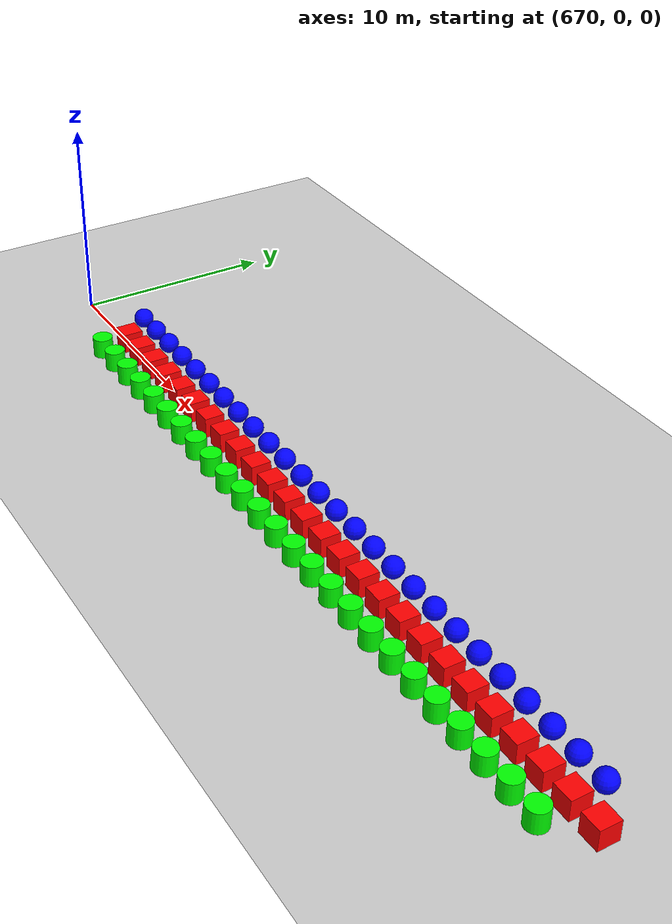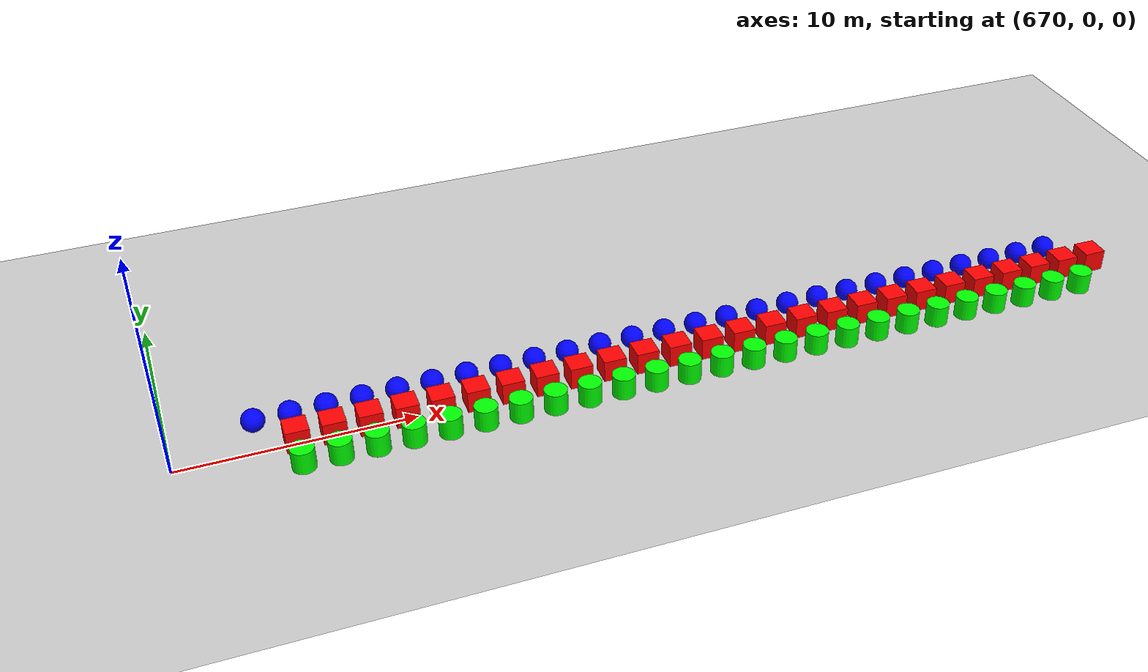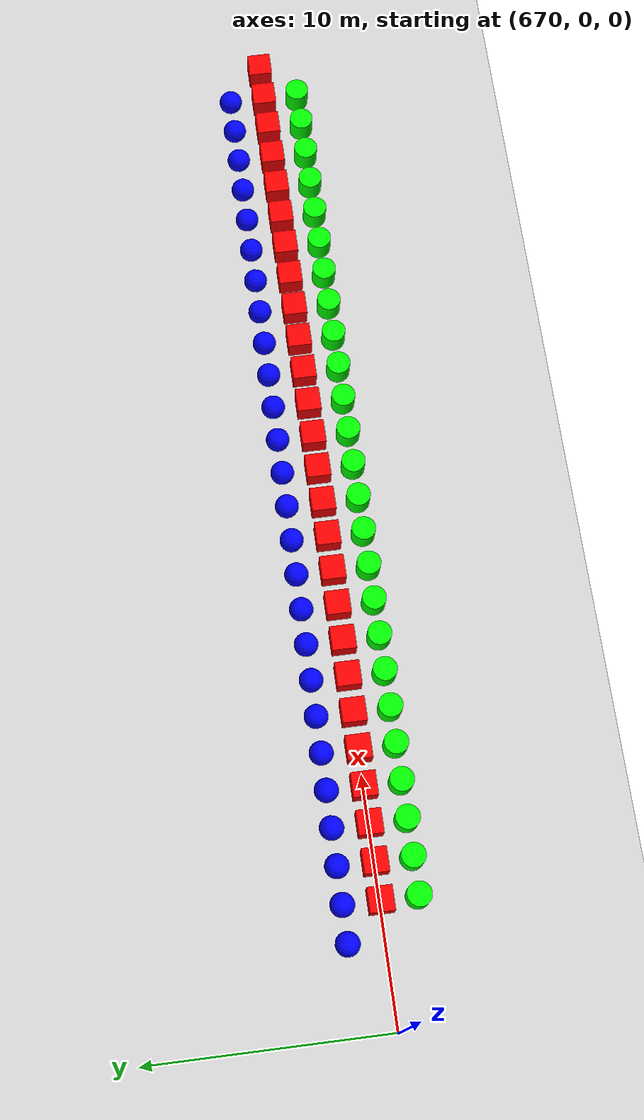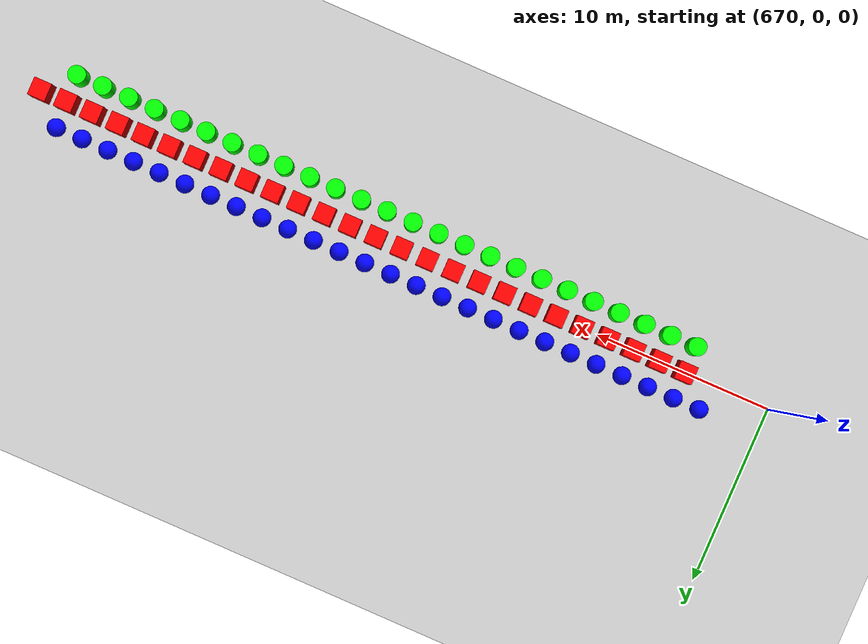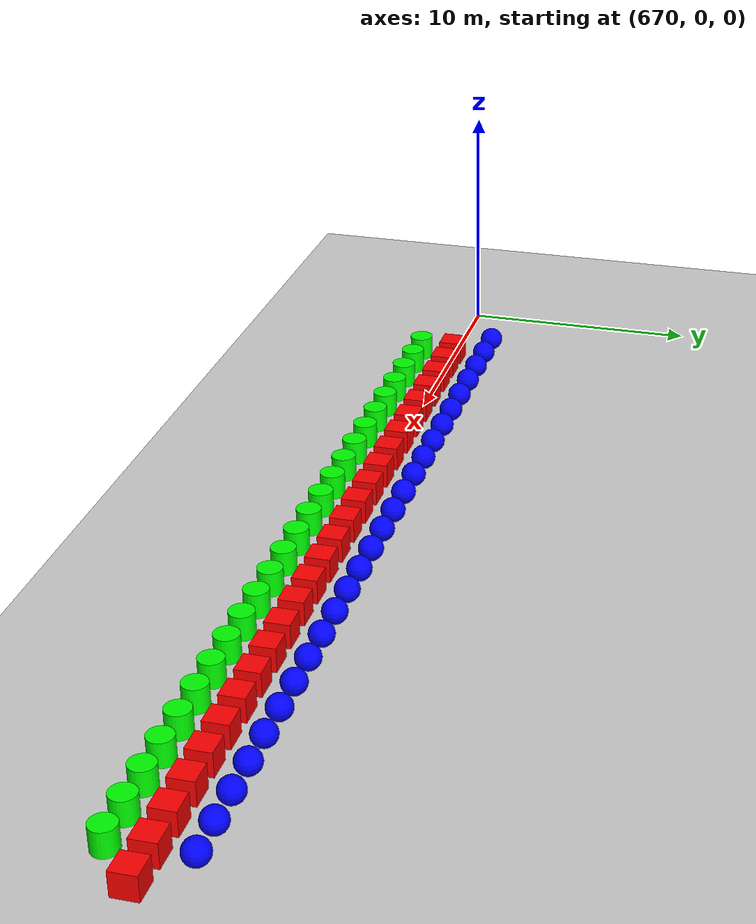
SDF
<sdf version="1.6">
 <world name="shapes">
  <model name="ground_plane">
   <static>true</static>
   <link name="link">
    <collision name="collision">
     <geometry><plane><normal>0 0 1</normal><size>100 100</size></plane></geometry>
    </collision>
    <visual name="visual">
     <geometry><plane><normal>0 0 1</normal><size>100 100</size></plane></geometry>
     <material>
      <ambient>0.8 0.8 0.8 1</ambient>
      <diffuse>0.8 0.8 0.8 1</diffuse>
      <specular>0.8 0.8 0.8 1</specular>
     </material>
    </visual>
   </link>
  </model>
  <model name="sphere_949">
   <static>false</static>
   <pose>673.5 1.5 0.5 0 0 0</pose>
   <link name="sphere_link">
    <inertial>
     <inertia><ixx>3</ixx><ixy>0</ixy><ixz>0</ixz><iyy>3</iyy><iyz>0</iyz><izz>3</izz></inertia>
     <mass>3.0</mass>
    </inertial>
    <collision name="sphere_collision"><geometry><sphere><radius>0.5</radius></sphere></geometry></collision>
    <visual name="sphere_visual">
     <geometry><sphere><radius>0.5</radius></sphere></geometry>
     <material><ambient>0 0 1 1</ambient><diffuse>0 0 1 1</diffuse><specular>0 0 1 1</specular></material>
    </visual>
   </link>
  </model>
  <model name="box_950">
   <static>false</static>
   <pose>675.0 0 0.5 0 0 0</pose>
   <link name="box_link">
    <inertial>
     <inertia><ixx>1</ixx><ixy>0</ixy><ixz>0</ixz><iyy>1</iyy><iyz>0</iyz><izz>1</izz></inertia>
     <mass>1.0</mass>
    </inertial>
    <collision name="box_collision"><geometry><box><size>1 1 1</size></box></geometry></collision>
    <visual name="box_visual">
     <geometry><box><size>1 1 1</size></box></geometry>
     <material><ambient>1 0 0 1</ambient><diffuse>1 0 0 1</diffuse><specular>1 0 0 1</specular></material>
    </visual>
   </link>
  </model>
  <model name="cylinder_950">
   <static>false</static>
   <pose>675.0 -1.5 0.5 0 0 0</pose>
   <link name="cylinder_link">
    <inertial>
     <inertia><ixx>2</ixx><ixy>0</ixy><ixz>0</ixz><iyy>2</iyy><iyz>0</iyz><izz>2</izz></inertia>
     <mass>2.0</mass>
    </inertial>
    <collision name="cylinder_collision">
     <geometry><cylinder><radius>0.5</radius><length>1.0</length></cylinder></geometry>
    </collision>
    <visual name="cylinder_visual">
     <geometry><cylinder><radius>0.5</radius><length>1.0</length></cylinder></geometry>
     <material><ambient>0 1 0 1</ambient><diffuse>0 1 0 1</diffuse><specular>0 1 0 1</specular></material>
    </visual>
   </link>
  </model>
  <model name="sphere_950">
   <static>false</static>
   <pose>675.0 1.5 0.5 0 0 0</pose>
   <link name="sphere_link">
    <inertial>
     <inertia><ixx>3</ixx><ixy>0</ixy><ixz>0</ixz><iyy>3</iyy><iyz>0</iyz><izz>3</izz></inertia>
     <mass>3.0</mass>
    </inertial>
    <collision name="sphere_collision"><geometry><sphere><radius>0.5</radius></sphere></geometry></collision>
    <visual name="sphere_visual">
     <geometry><sphere><radius>0.5</radius></sphere></geometry>
     <material><ambient>0 0 1 1</ambient><diffuse>0 0 1 1</diffuse><specular>0 0 1 1</specular></material>
    </visual>
   </link>
  </model>
  <model name="box_951">
   <static>false</static>
   <pose>676.5 0 0.5 0 0 0</pose>
   <link name="box_link">
    <inertial>
     <inertia><ixx>1</ixx><ixy>0</ixy><ixz>0</ixz><iyy>1</iyy><iyz>0</iyz><izz>1</izz></inertia>
     <mass>1.0</mass>
    </inertial>
    <collision name="box_collision"><geometry><box><size>1 1 1</size></box></geometry></collision>
    <visual name="box_visual">
     <geometry><box><size>1 1 1</size></box></geometry>
     <material><ambient>1 0 0 1</ambient><diffuse>1 0 0 1</diffuse><specular>1 0 0 1</specular></material>
    </visual>
   </link>
  </model>
  <model name="cylinder_951">
   <static>false</static>
   <pose>676.5 -1.5 0.5 0 0 0</pose>
   <link name="cylinder_link">
    <inertial>
     <inertia><ixx>2</ixx><ixy>0</ixy><ixz>0</ixz><iyy>2</iyy><iyz>0</iyz><izz>2</izz></inertia>
     <mass>2.0</mass>
    </inertial>
    <collision name="cylinder_collision">
     <geometry><cylinder><radius>0.5</radius><length>1.0</length></cylinder></geometry>
    </collision>
    <visual name="cylinder_visual">
     <geometry><cylinder><radius>0.5</radius><length>1.0</length></cylinder></geometry>
     <material><ambient>0 1 0 1</ambient><diffuse>0 1 0 1</diffuse><specular>0 1 0 1</specular></material>
    </visual>
   </link>
  </model>
  <model name="sphere_951">
   <static>false</static>
   <pose>676.5 1.5 0.5 0 0 0</pose>
   <link name="sphere_link">
    <inertial>
     <inertia><ixx>3</ixx><ixy>0</ixy><ixz>0</ixz><iyy>3</iyy><iyz>0</iyz><izz>3</izz></inertia>
     <mass>3.0</mass>
    </inertial>
    <collision name="sphere_collision"><geometry><sphere><radius>0.5</radius></sphere></geometry></collision>
    <visual name="sphere_visual">
     <geometry><sphere><radius>0.5</radius></sphere></geometry>
     <material><ambient>0 0 1 1</ambient><diffuse>0 0 1 1</diffuse><specular>0 0 1 1</specular></material>
    </visual>
   </link>
  </model>
  <model name="box_952">
   <static>false</static>
   <pose>678.0 0 0.5 0 0 0</pose>
   <link name="box_link">
    <inertial>
     <inertia><ixx>1</ixx><ixy>0</ixy><ixz>0</ixz><iyy>1</iyy><iyz>0</iyz><izz>1</izz></inertia>
     <mass>1.0</mass>
    </inertial>
    <collision name="box_collision"><geometry><box><size>1 1 1</size></box></geometry></collision>
    <visual name="box_visual">
     <geometry><box><size>1 1 1</size></box></geometry>
     <material><ambient>1 0 0 1</ambient><diffuse>1 0 0 1</diffuse><specular>1 0 0 1</specular></material>
    </visual>
   </link>
  </model>
  <model name="cylinder_952">
   <static>false</static>
   <pose>678.0 -1.5 0.5 0 0 0</pose>
   <link name="cylinder_link">
    <inertial>
     <inertia><ixx>2</ixx><ixy>0</ixy><ixz>0</ixz><iyy>2</iyy><iyz>0</iyz><izz>2</izz></inertia>
     <mass>2.0</mass>
    </inertial>
    <collision name="cylinder_collision">
     <geometry><cylinder><radius>0.5</radius><length>1.0</length></cylinder></geometry>
    </collision>
    <visual name="cylinder_visual">
     <geometry><cylinder><radius>0.5</radius><length>1.0</length></cylinder></geometry>
     <material><ambient>0 1 0 1</ambient><diffuse>0 1 0 1</diffuse><specular>0 1 0 1</specular></material>
    </visual>
   </link>
  </model>
  <model name="sphere_952">
   <static>false</static>
   <pose>678.0 1.5 0.5 0 0 0</pose>
   <link name="sphere_link">
    <inertial>
     <inertia><ixx>3</ixx><ixy>0</ixy><ixz>0</ixz><iyy>3</iyy><iyz>0</iyz><izz>3</izz></inertia>
     <mass>3.0</mass>
    </inertial>
    <collision name="sphere_collision"><geometry><sphere><radius>0.5</radius></sphere></geometry></collision>
    <visual name="sphere_visual">
     <geometry><sphere><radius>0.5</radius></sphere></geometry>
     <material><ambient>0 0 1 1</ambient><diffuse>0 0 1 1</diffuse><specular>0 0 1 1</specular></material>
    </visual>
   </link>
  </model>
  <model name="box_953">
   <static>false</static>
   <pose>679.5 0 0.5 0 0 0</pose>
   <link name="box_link">
    <inertial>
     <inertia><ixx>1</ixx><ixy>0</ixy><ixz>0</ixz><iyy>1</iyy><iyz>0</iyz><izz>1</izz></inertia>
     <mass>1.0</mass>
    </inertial>
    <collision name="box_collision"><geometry><box><size>1 1 1</size></box></geometry></collision>
    <visual name="box_visual">
     <geometry><box><size>1 1 1</size></box></geometry>
     <material><ambient>1 0 0 1</ambient><diffuse>1 0 0 1</diffuse><specular>1 0 0 1</specular></material>
    </visual>
   </link>
  </model>
  <model name="cylinder_953">
   <static>false</static>
   <pose>679.5 -1.5 0.5 0 0 0</pose>
   <link name="cylinder_link">
    <inertial>
     <inertia><ixx>2</ixx><ixy>0</ixy><ixz>0</ixz><iyy>2</iyy><iyz>0</iyz><izz>2</izz></inertia>
     <mass>2.0</mass>
    </inertial>
    <collision name="cylinder_collision">
     <geometry><cylinder><radius>0.5</radius><length>1.0</length></cylinder></geometry>
    </collision>
    <visual name="cylinder_visual">
     <geometry><cylinder><radius>0.5</radius><length>1.0</length></cylinder></geometry>
     <material><ambient>0 1 0 1</ambient><diffuse>0 1 0 1</diffuse><specular>0 1 0 1</specular></material>
    </visual>
   </link>
  </model>
  <model name="sphere_953">
   <static>false</static>
   <pose>679.5 1.5 0.5 0 0 0</pose>
   <link name="sphere_link">
    <inertial>
     <inertia><ixx>3</ixx><ixy>0</ixy><ixz>0</ixz><iyy>3</iyy><iyz>0</iyz><izz>3</izz></inertia>
     <mass>3.0</mass>
    </inertial>
    <collision name="sphere_collision"><geometry><sphere><radius>0.5</radius></sphere></geometry></collision>
    <visual name="sphere_visual">
     <geometry><sphere><radius>0.5</radius></sphere></geometry>
     <material><ambient>0 0 1 1</ambient><diffuse>0 0 1 1</diffuse><specular>0 0 1 1</specular></material>
    </visual>
   </link>
  </model>
  <model name="box_954">
   <static>false</static>
   <pose>681.0 0 0.5 0 0 0</pose>
   <link name="box_link">
    <inertial>
     <inertia><ixx>1</ixx><ixy>0</ixy><ixz>0</ixz><iyy>1</iyy><iyz>0</iyz><izz>1</izz></inertia>
     <mass>1.0</mass>
    </inertial>
    <collision name="box_collision"><geometry><box><size>1 1 1</size></box></geometry></collision>
    <visual name="box_visual">
     <geometry><box><size>1 1 1</size></box></geometry>
     <material><ambient>1 0 0 1</ambient><diffuse>1 0 0 1</diffuse><specular>1 0 0 1</specular></material>
    </visual>
   </link>
  </model>
  <model name="cylinder_954">
   <static>false</static>
   <pose>681.0 -1.5 0.5 0 0 0</pose>
   <link name="cylinder_link">
    <inertial>
     <inertia><ixx>2</ixx><ixy>0</ixy><ixz>0</ixz><iyy>2</iyy><iyz>0</iyz><izz>2</izz></inertia>
     <mass>2.0</mass>
    </inertial>
    <collision name="cylinder_collision">
     <geometry><cylinder><radius>0.5</radius><length>1.0</length></cylinder></geometry>
    </collision>
    <visual name="cylinder_visual">
     <geometry><cylinder><radius>0.5</radius><length>1.0</length></cylinder></geometry>
     <material><ambient>0 1 0 1</ambient><diffuse>0 1 0 1</diffuse><specular>0 1 0 1</specular></material>
    </visual>
   </link>
  </model>
  <model name="sphere_954">
   <static>false</static>
   <pose>681.0 1.5 0.5 0 0 0</pose>
   <link name="sphere_link">
    <inertial>
     <inertia><ixx>3</ixx><ixy>0</ixy><ixz>0</ixz><iyy>3</iyy><iyz>0</iyz><izz>3</izz></inertia>
     <mass>3.0</mass>
    </inertial>
    <collision name="sphere_collision"><geometry><sphere><radius>0.5</radius></sphere></geometry></collision>
    <visual name="sphere_visual">
     <geometry><sphere><radius>0.5</radius></sphere></geometry>
     <material><ambient>0 0 1 1</ambient><diffuse>0 0 1 1</diffuse><specular>0 0 1 1</specular></material>
    </visual>
   </link>
  </model>
  <model name="box_955">
   <static>false</static>
   <pose>682.5 0 0.5 0 0 0</pose>
   <link name="box_link">
    <inertial>
     <inertia><ixx>1</ixx><ixy>0</ixy><ixz>0</ixz><iyy>1</iyy><iyz>0</iyz><izz>1</izz></inertia>
     <mass>1.0</mass>
    </inertial>
    <collision name="box_collision"><geometry><box><size>1 1 1</size></box></geometry></collision>
    <visual name="box_visual">
     <geometry><box><size>1 1 1</size></box></geometry>
     <material><ambient>1 0 0 1</ambient><diffuse>1 0 0 1</diffuse><specular>1 0 0 1</specular></material>
    </visual>
   </link>
  </model>
  <model name="cylinder_955">
   <static>false</static>
   <pose>682.5 -1.5 0.5 0 0 0</pose>
   <link name="cylinder_link">
    <inertial>
     <inertia><ixx>2</ixx><ixy>0</ixy><ixz>0</ixz><iyy>2</iyy><iyz>0</iyz><izz>2</izz></inertia>
     <mass>2.0</mass>
    </inertial>
    <collision name="cylinder_collision">
     <geometry><cylinder><radius>0.5</radius><length>1.0</length></cylinder></geometry>
    </collision>
    <visual name="cylinder_visual">
     <geometry><cylinder><radius>0.5</radius><length>1.0</length></cylinder></geometry>
     <material><ambient>0 1 0 1</ambient><diffuse>0 1 0 1</diffuse><specular>0 1 0 1</specular></material>
    </visual>
   </link>
  </model>
  <model name="sphere_955">
   <static>false</static>
   <pose>682.5 1.5 0.5 0 0 0</pose>
   <link name="sphere_link">
    <inertial>
     <inertia><ixx>3</ixx><ixy>0</ixy><ixz>0</ixz><iyy>3</iyy><iyz>0</iyz><izz>3</izz></inertia>
     <mass>3.0</mass>
    </inertial>
    <collision name="sphere_collision"><geometry><sphere><radius>0.5</radius></sphere></geometry></collision>
    <visual name="sphere_visual">
     <geometry><sphere><radius>0.5</radius></sphere></geometry>
     <material><ambient>0 0 1 1</ambient><diffuse>0 0 1 1</diffuse><specular>0 0 1 1</specular></material>
    </visual>
   </link>
  </model>
  <model name="box_956">
   <static>false</static>
   <pose>684.0 0 0.5 0 0 0</pose>
   <link name="box_link">
    <inertial>
     <inertia><ixx>1</ixx><ixy>0</ixy><ixz>0</ixz><iyy>1</iyy><iyz>0</iyz><izz>1</izz></inertia>
     <mass>1.0</mass>
    </inertial>
    <collision name="box_collision"><geometry><box><size>1 1 1</size></box></geometry></collision>
    <visual name="box_visual">
     <geometry><box><size>1 1 1</size></box></geometry>
     <material><ambient>1 0 0 1</ambient><diffuse>1 0 0 1</diffuse><specular>1 0 0 1</specular></material>
    </visual>
   </link>
  </model>
  <model name="cylinder_956">
   <static>false</static>
   <pose>684.0 -1.5 0.5 0 0 0</pose>
   <link name="cylinder_link">
    <inertial>
     <inertia><ixx>2</ixx><ixy>0</ixy><ixz>0</ixz><iyy>2</iyy><iyz>0</iyz><izz>2</izz></inertia>
     <mass>2.0</mass>
    </inertial>
    <collision name="cylinder_collision">
     <geometry><cylinder><radius>0.5</radius><length>1.0</length></cylinder></geometry>
    </collision>
    <visual name="cylinder_visual">
     <geometry><cylinder><radius>0.5</radius><length>1.0</length></cylinder></geometry>
     <material><ambient>0 1 0 1</ambient><diffuse>0 1 0 1</diffuse><specular>0 1 0 1</specular></material>
    </visual>
   </link>
  </model>
  <model name="sphere_956">
   <static>false</static>
   <pose>684.0 1.5 0.5 0 0 0</pose>
   <link name="sphere_link">
    <inertial>
     <inertia><ixx>3</ixx><ixy>0</ixy><ixz>0</ixz><iyy>3</iyy><iyz>0</iyz><izz>3</izz></inertia>
     <mass>3.0</mass>
    </inertial>
    <collision name="sphere_collision"><geometry><sphere><radius>0.5</radius></sphere></geometry></collision>
    <visual name="sphere_visual">
     <geometry><sphere><radius>0.5</radius></sphere></geometry>
     <material><ambient>0 0 1 1</ambient><diffuse>0 0 1 1</diffuse><specular>0 0 1 1</specular></material>
    </visual>
   </link>
  </model>
  <model name="box_957">
   <static>false</static>
   <pose>685.5 0 0.5 0 0 0</pose>
   <link name="box_link">
    <inertial>
     <inertia><ixx>1</ixx><ixy>0</ixy><ixz>0</ixz><iyy>1</iyy><iyz>0</iyz><izz>1</izz></inertia>
     <mass>1.0</mass>
    </inertial>
    <collision name="box_collision"><geometry><box><size>1 1 1</size></box></geometry></collision>
    <visual name="box_visual">
     <geometry><box><size>1 1 1</size></box></geometry>
     <material><ambient>1 0 0 1</ambient><diffuse>1 0 0 1</diffuse><specular>1 0 0 1</specular></material>
    </visual>
   </link>
  </model>
  <model name="cylinder_957">
   <static>false</static>
   <pose>685.5 -1.5 0.5 0 0 0</pose>
   <link name="cylinder_link">
    <inertial>
     <inertia><ixx>2</ixx><ixy>0</ixy><ixz>0</ixz><iyy>2</iyy><iyz>0</iyz><izz>2</izz></inertia>
     <mass>2.0</mass>
    </inertial>
    <collision name="cylinder_collision">
     <geometry><cylinder><radius>0.5</radius><length>1.0</length></cylinder></geometry>
    </collision>
    <visual name="cylinder_visual">
     <geometry><cylinder><radius>0.5</radius><length>1.0</length></cylinder></geometry>
     <material><ambient>0 1 0 1</ambient><diffuse>0 1 0 1</diffuse><specular>0 1 0 1</specular></material>
    </visual>
   </link>
  </model>
  <model name="sphere_957">
   <static>false</static>
   <pose>685.5 1.5 0.5 0 0 0</pose>
   <link name="sphere_link">
    <inertial>
     <inertia><ixx>3</ixx><ixy>0</ixy><ixz>0</ixz><iyy>3</iyy><iyz>0</iyz><izz>3</izz></inertia>
     <mass>3.0</mass>
    </inertial>
    <collision name="sphere_collision"><geometry><sphere><radius>0.5</radius></sphere></geometry></collision>
    <visual name="sphere_visual">
     <geometry><sphere><radius>0.5</radius></sphere></geometry>
     <material><ambient>0 0 1 1</ambient><diffuse>0 0 1 1</diffuse><specular>0 0 1 1</specular></material>
    </visual>
   </link>
  </model>
  <model name="box_958">
   <static>false</static>
   <pose>687.0 0 0.5 0 0 0</pose>
   <link name="box_link">
    <inertial>
     <inertia><ixx>1</ixx><ixy>0</ixy><ixz>0</ixz><iyy>1</iyy><iyz>0</iyz><izz>1</izz></inertia>
     <mass>1.0</mass>
    </inertial>
    <collision name="box_collision"><geometry><box><size>1 1 1</size></box></geometry></collision>
    <visual name="box_visual">
     <geometry><box><size>1 1 1</size></box></geometry>
     <material><ambient>1 0 0 1</ambient><diffuse>1 0 0 1</diffuse><specular>1 0 0 1</specular></material>
    </visual>
   </link>
  </model>
  <model name="cylinder_958">
   <static>false</static>
   <pose>687.0 -1.5 0.5 0 0 0</pose>
   <link name="cylinder_link">
    <inertial>
     <inertia><ixx>2</ixx><ixy>0</ixy><ixz>0</ixz><iyy>2</iyy><iyz>0</iyz><izz>2</izz></inertia>
     <mass>2.0</mass>
    </inertial>
    <collision name="cylinder_collision">
     <geometry><cylinder><radius>0.5</radius><length>1.0</length></cylinder></geometry>
    </collision>
    <visual name="cylinder_visual">
     <geometry><cylinder><radius>0.5</radius><length>1.0</length></cylinder></geometry>
     <material><ambient>0 1 0 1</ambient><diffuse>0 1 0 1</diffuse><specular>0 1 0 1</specular></material>
    </visual>
   </link>
  </model>
  <model name="sphere_958">
   <static>false</static>
   <pose>687.0 1.5 0.5 0 0 0</pose>
   <link name="sphere_link">
    <inertial>
     <inertia><ixx>3</ixx><ixy>0</ixy><ixz>0</ixz><iyy>3</iyy><iyz>0</iyz><izz>3</izz></inertia>
     <mass>3.0</mass>
    </inertial>
    <collision name="sphere_collision"><geometry><sphere><radius>0.5</radius></sphere></geometry></collision>
    <visual name="sphere_visual">
     <geometry><sphere><radius>0.5</radius></sphere></geometry>
     <material><ambient>0 0 1 1</ambient><diffuse>0 0 1 1</diffuse><specular>0 0 1 1</specular></material>
    </visual>
   </link>
  </model>
  <model name="box_959">
   <static>false</static>
   <pose>688.5 0 0.5 0 0 0</pose>
   <link name="box_link">
    <inertial>
     <inertia><ixx>1</ixx><ixy>0</ixy><ixz>0</ixz><iyy>1</iyy><iyz>0</iyz><izz>1</izz></inertia>
     <mass>1.0</mass>
    </inertial>
    <collision name="box_collision"><geometry><box><size>1 1 1</size></box></geometry></collision>
    <visual name="box_visual">
     <geometry><box><size>1 1 1</size></box></geometry>
     <material><ambient>1 0 0 1</ambient><diffuse>1 0 0 1</diffuse><specular>1 0 0 1</specular></material>
    </visual>
   </link>
  </model>
  <model name="cylinder_959">
   <static>false</static>
   <pose>688.5 -1.5 0.5 0 0 0</pose>
   <link name="cylinder_link">
    <inertial>
     <inertia><ixx>2</ixx><ixy>0</ixy><ixz>0</ixz><iyy>2</iyy><iyz>0</iyz><izz>2</izz></inertia>
     <mass>2.0</mass>
    </inertial>
    <collision name="cylinder_collision">
     <geometry><cylinder><radius>0.5</radius><length>1.0</length></cylinder></geometry>
    </collision>
    <visual name="cylinder_visual">
     <geometry><cylinder><radius>0.5</radius><length>1.0</length></cylinder></geometry>
     <material><ambient>0 1 0 1</ambient><diffuse>0 1 0 1</diffuse><specular>0 1 0 1</specular></material>
    </visual>
   </link>
  </model>
  <model name="sphere_959">
   <static>false</static>
   <pose>688.5 1.5 0.5 0 0 0</pose>
   <link name="sphere_link">
    <inertial>
     <inertia><ixx>3</ixx><ixy>0</ixy><ixz>0</ixz><iyy>3</iyy><iyz>0</iyz><izz>3</izz></inertia>
     <mass>3.0</mass>
    </inertial>
    <collision name="sphere_collision"><geometry><sphere><radius>0.5</radius></sphere></geometry></collision>
    <visual name="sphere_visual">
     <geometry><sphere><radius>0.5</radius></sphere></geometry>
     <material><ambient>0 0 1 1</ambient><diffuse>0 0 1 1</diffuse><specular>0 0 1 1</specular></material>
    </visual>
   </link>
  </model>
  <model name="box_960">
   <static>false</static>
   <pose>690.0 0 0.5 0 0 0</pose>
   <link name="box_link">
    <inertial>
     <inertia><ixx>1</ixx><ixy>0</ixy><ixz>0</ixz><iyy>1</iyy><iyz>0</iyz><izz>1</izz></inertia>
     <mass>1.0</mass>
    </inertial>
    <collision name="box_collision"><geometry><box><size>1 1 1</size></box></geometry></collision>
    <visual name="box_visual">
     <geometry><box><size>1 1 1</size></box></geometry>
     <material><ambient>1 0 0 1</ambient><diffuse>1 0 0 1</diffuse><specular>1 0 0 1</specular></material>
    </visual>
   </link>
  </model>
  <model name="cylinder_960">
   <static>false</static>
   <pose>690.0 -1.5 0.5 0 0 0</pose>
   <link name="cylinder_link">
    <inertial>
     <inertia><ixx>2</ixx><ixy>0</ixy><ixz>0</ixz><iyy>2</iyy><iyz>0</iyz><izz>2</izz></inertia>
     <mass>2.0</mass>
    </inertial>
    <collision name="cylinder_collision">
     <geometry><cylinder><radius>0.5</radius><length>1.0</length></cylinder></geometry>
    </collision>
    <visual name="cylinder_visual">
     <geometry><cylinder><radius>0.5</radius><length>1.0</length></cylinder></geometry>
     <material><ambient>0 1 0 1</ambient><diffuse>0 1 0 1</diffuse><specular>0 1 0 1</specular></material>
    </visual>
   </link>
  </model>
  <model name="sphere_960">
   <static>false</static>
   <pose>690.0 1.5 0.5 0 0 0</pose>
   <link name="sphere_link">
    <inertial>
     <inertia><ixx>3</ixx><ixy>0</ixy><ixz>0</ixz><iyy>3</iyy><iyz>0</iyz><izz>3</izz></inertia>
     <mass>3.0</mass>
    </inertial>
    <collision name="sphere_collision"><geometry><sphere><radius>0.5</radius></sphere></geometry></collision>
    <visual name="sphere_visual">
     <geometry><sphere><radius>0.5</radius></sphere></geometry>
     <material><ambient>0 0 1 1</ambient><diffuse>0 0 1 1</diffuse><specular>0 0 1 1</specular></material>
    </visual>
   </link>
  </model>
  <model name="box_961">
   <static>false</static>
   <pose>691.5 0 0.5 0 0 0</pose>
   <link name="box_link">
    <inertial>
     <inertia><ixx>1</ixx><ixy>0</ixy><ixz>0</ixz><iyy>1</iyy><iyz>0</iyz><izz>1</izz></inertia>
     <mass>1.0</mass>
    </inertial>
    <collision name="box_collision"><geometry><box><size>1 1 1</size></box></geometry></collision>
    <visual name="box_visual">
     <geometry><box><size>1 1 1</size></box></geometry>
     <material><ambient>1 0 0 1</ambient><diffuse>1 0 0 1</diffuse><specular>1 0 0 1</specular></material>
    </visual>
   </link>
  </model>
  <model name="cylinder_961">
   <static>false</static>
   <pose>691.5 -1.5 0.5 0 0 0</pose>
   <link name="cylinder_link">
    <inertial>
     <inertia><ixx>2</ixx><ixy>0</ixy><ixz>0</ixz><iyy>2</iyy><iyz>0</iyz><izz>2</izz></inertia>
     <mass>2.0</mass>
    </inertial>
    <collision name="cylinder_collision">
     <geometry><cylinder><radius>0.5</radius><length>1.0</length></cylinder></geometry>
    </collision>
    <visual name="cylinder_visual">
     <geometry><cylinder><radius>0.5</radius><length>1.0</length></cylinder></geometry>
     <material><ambient>0 1 0 1</ambient><diffuse>0 1 0 1</diffuse><specular>0 1 0 1</specular></material>
    </visual>
   </link>
  </model>
  <model name="sphere_961">
   <static>false</static>
   <pose>691.5 1.5 0.5 0 0 0</pose>
   <link name="sphere_link">
    <inertial>
     <inertia><ixx>3</ixx><ixy>0</ixy><ixz>0</ixz><iyy>3</iyy><iyz>0</iyz><izz>3</izz></inertia>
     <mass>3.0</mass>
    </inertial>
    <collision name="sphere_collision"><geometry><sphere><radius>0.5</radius></sphere></geometry></collision>
    <visual name="sphere_visual">
     <geometry><sphere><radius>0.5</radius></sphere></geometry>
     <material><ambient>0 0 1 1</ambient><diffuse>0 0 1 1</diffuse><specular>0 0 1 1</specular></material>
    </visual>
   </link>
  </model>
  <model name="box_962">
   <static>false</static>
   <pose>693.0 0 0.5 0 0 0</pose>
   <link name="box_link">
    <inertial>
     <inertia><ixx>1</ixx><ixy>0</ixy><ixz>0</ixz><iyy>1</iyy><iyz>0</iyz><izz>1</izz></inertia>
     <mass>1.0</mass>
    </inertial>
    <collision name="box_collision"><geometry><box><size>1 1 1</size></box></geometry></collision>
    <visual name="box_visual">
     <geometry><box><size>1 1 1</size></box></geometry>
     <material><ambient>1 0 0 1</ambient><diffuse>1 0 0 1</diffuse><specular>1 0 0 1</specular></material>
    </visual>
   </link>
  </model>
  <model name="cylinder_962">
   <static>false</static>
   <pose>693.0 -1.5 0.5 0 0 0</pose>
   <link name="cylinder_link">
    <inertial>
     <inertia><ixx>2</ixx><ixy>0</ixy><ixz>0</ixz><iyy>2</iyy><iyz>0</iyz><izz>2</izz></inertia>
     <mass>2.0</mass>
    </inertial>
    <collision name="cylinder_collision">
     <geometry><cylinder><radius>0.5</radius><length>1.0</length></cylinder></geometry>
    </collision>
    <visual name="cylinder_visual">
     <geometry><cylinder><radius>0.5</radius><length>1.0</length></cylinder></geometry>
     <material><ambient>0 1 0 1</ambient><diffuse>0 1 0 1</diffuse><specular>0 1 0 1</specular></material>
    </visual>
   </link>
  </model>
  <model name="sphere_962">
   <static>false</static>
   <pose>693.0 1.5 0.5 0 0 0</pose>
   <link name="sphere_link">
    <inertial>
     <inertia><ixx>3</ixx><ixy>0</ixy><ixz>0</ixz><iyy>3</iyy><iyz>0</iyz><izz>3</izz></inertia>
     <mass>3.0</mass>
    </inertial>
    <collision name="sphere_collision"><geometry><sphere><radius>0.5</radius></sphere></geometry></collision>
    <visual name="sphere_visual">
     <geometry><sphere><radius>0.5</radius></sphere></geometry>
     <material><ambient>0 0 1 1</ambient><diffuse>0 0 1 1</diffuse><specular>0 0 1 1</specular></material>
    </visual>
   </link>
  </model>
  <model name="box_963">
   <static>false</static>
   <pose>694.5 0 0.5 0 0 0</pose>
   <link name="box_link">
    <inertial>
     <inertia><ixx>1</ixx><ixy>0</ixy><ixz>0</ixz><iyy>1</iyy><iyz>0</iyz><izz>1</izz></inertia>
     <mass>1.0</mass>
    </inertial>
    <collision name="box_collision"><geometry><box><size>1 1 1</size></box></geometry></collision>
    <visual name="box_visual">
     <geometry><box><size>1 1 1</size></box></geometry>
     <material><ambient>1 0 0 1</ambient><diffuse>1 0 0 1</diffuse><specular>1 0 0 1</specular></material>
    </visual>
   </link>
  </model>
  <model name="cylinder_963">
   <static>false</static>
   <pose>694.5 -1.5 0.5 0 0 0</pose>
   <link name="cylinder_link">
    <inertial>
     <inertia><ixx>2</ixx><ixy>0</ixy><ixz>0</ixz><iyy>2</iyy><iyz>0</iyz><izz>2</izz></inertia>
     <mass>2.0</mass>
    </inertial>
    <collision name="cylinder_collision">
     <geometry><cylinder><radius>0.5</radius><length>1.0</length></cylinder></geometry>
    </collision>
    <visual name="cylinder_visual">
     <geometry><cylinder><radius>0.5</radius><length>1.0</length></cylinder></geometry>
     <material><ambient>0 1 0 1</ambient><diffuse>0 1 0 1</diffuse><specular>0 1 0 1</specular></material>
    </visual>
   </link>
  </model>
  <model name="sphere_963">
   <static>false</static>
   <pose>694.5 1.5 0.5 0 0 0</pose>
   <link name="sphere_link">
    <inertial>
     <inertia><ixx>3</ixx><ixy>0</ixy><ixz>0</ixz><iyy>3</iyy><iyz>0</iyz><izz>3</izz></inertia>
     <mass>3.0</mass>
    </inertial>
    <collision name="sphere_collision"><geometry><sphere><radius>0.5</radius></sphere></geometry></collision>
    <visual name="sphere_visual">
     <geometry><sphere><radius>0.5</radius></sphere></geometry>
     <material><ambient>0 0 1 1</ambient><diffuse>0 0 1 1</diffuse><specular>0 0 1 1</specular></material>
    </visual>
   </link>
  </model>
  <model name="box_964">
   <static>false</static>
   <pose>696.0 0 0.5 0 0 0</pose>
   <link name="box_link">
    <inertial>
     <inertia><ixx>1</ixx><ixy>0</ixy><ixz>0</ixz><iyy>1</iyy><iyz>0</iyz><izz>1</izz></inertia>
     <mass>1.0</mass>
    </inertial>
    <collision name="box_collision"><geometry><box><size>1 1 1</size></box></geometry></collision>
    <visual name="box_visual">
     <geometry><box><size>1 1 1</size></box></geometry>
     <material><ambient>1 0 0 1</ambient><diffuse>1 0 0 1</diffuse><specular>1 0 0 1</specular></material>
    </visual>
   </link>
  </model>
  <model name="cylinder_964">
   <static>false</static>
   <pose>696.0 -1.5 0.5 0 0 0</pose>
   <link name="cylinder_link">
    <inertial>
     <inertia><ixx>2</ixx><ixy>0</ixy><ixz>0</ixz><iyy>2</iyy><iyz>0</iyz><izz>2</izz></inertia>
     <mass>2.0</mass>
    </inertial>
    <collision name="cylinder_collision">
     <geometry><cylinder><radius>0.5</radius><length>1.0</length></cylinder></geometry>
    </collision>
    <visual name="cylinder_visual">
     <geometry><cylinder><radius>0.5</radius><length>1.0</length></cylinder></geometry>
     <material><ambient>0 1 0 1</ambient><diffuse>0 1 0 1</diffuse><specular>0 1 0 1</specular></material>
    </visual>
   </link>
  </model>
  <model name="sphere_964">
   <static>false</static>
   <pose>696.0 1.5 0.5 0 0 0</pose>
   <link name="sphere_link">
    <inertial>
     <inertia><ixx>3</ixx><ixy>0</ixy><ixz>0</ixz><iyy>3</iyy><iyz>0</iyz><izz>3</izz></inertia>
     <mass>3.0</mass>
    </inertial>
    <collision name="sphere_collision"><geometry><sphere><radius>0.5</radius></sphere></geometry></collision>
    <visual name="sphere_visual">
     <geometry><sphere><radius>0.5</radius></sphere></geometry>
     <material><ambient>0 0 1 1</ambient><diffuse>0 0 1 1</diffuse><specular>0 0 1 1</specular></material>
    </visual>
   </link>
  </model>
  <model name="box_965">
   <static>false</static>
   <pose>697.5 0 0.5 0 0 0</pose>
   <link name="box_link">
    <inertial>
     <inertia><ixx>1</ixx><ixy>0</ixy><ixz>0</ixz><iyy>1</iyy><iyz>0</iyz><izz>1</izz></inertia>
     <mass>1.0</mass>
    </inertial>
    <collision name="box_collision"><geometry><box><size>1 1 1</size></box></geometry></collision>
    <visual name="box_visual">
     <geometry><box><size>1 1 1</size></box></geometry>
     <material><ambient>1 0 0 1</ambient><diffuse>1 0 0 1</diffuse><specular>1 0 0 1</specular></material>
    </visual>
   </link>
  </model>
  <model name="cylinder_965">
   <static>false</static>
   <pose>697.5 -1.5 0.5 0 0 0</pose>
   <link name="cylinder_link">
    <inertial>
     <inertia><ixx>2</ixx><ixy>0</ixy><ixz>0</ixz><iyy>2</iyy><iyz>0</iyz><izz>2</izz></inertia>
     <mass>2.0</mass>
    </inertial>
    <collision name="cylinder_collision">
     <geometry><cylinder><radius>0.5</radius><length>1.0</length></cylinder></geometry>
    </collision>
    <visual name="cylinder_visual">
     <geometry><cylinder><radius>0.5</radius><length>1.0</length></cylinder></geometry>
     <material><ambient>0 1 0 1</ambient><diffuse>0 1 0 1</diffuse><specular>0 1 0 1</specular></material>
    </visual>
   </link>
  </model>
  <model name="sphere_965">
   <static>false</static>
   <pose>697.5 1.5 0.5 0 0 0</pose>
   <link name="sphere_link">
    <inertial>
     <inertia><ixx>3</ixx><ixy>0</ixy><ixz>0</ixz><iyy>3</iyy><iyz>0</iyz><izz>3</izz></inertia>
     <mass>3.0</mass>
    </inertial>
    <collision name="sphere_collision"><geometry><sphere><radius>0.5</radius></sphere></geometry></collision>
    <visual name="sphere_visual">
     <geometry><sphere><radius>0.5</radius></sphere></geometry>
     <material><ambient>0 0 1 1</ambient><diffuse>0 0 1 1</diffuse><specular>0 0 1 1</specular></material>
    </visual>
   </link>
  </model>
  <model name="box_966">
   <static>false</static>
   <pose>699.0 0 0.5 0 0 0</pose>
   <link name="box_link">
    <inertial>
     <inertia><ixx>1</ixx><ixy>0</ixy><ixz>0</ixz><iyy>1</iyy><iyz>0</iyz><izz>1</izz></inertia>
     <mass>1.0</mass>
    </inertial>
    <collision name="box_collision"><geometry><box><size>1 1 1</size></box></geometry></collision>
    <visual name="box_visual">
     <geometry><box><size>1 1 1</size></box></geometry>
     <material><ambient>1 0 0 1</ambient><diffuse>1 0 0 1</diffuse><specular>1 0 0 1</specular></material>
    </visual>
   </link>
  </model>
  <model name="cylinder_966">
   <static>false</static>
   <pose>699.0 -1.5 0.5 0 0 0</pose>
   <link name="cylinder_link">
    <inertial>
     <inertia><ixx>2</ixx><ixy>0</ixy><ixz>0</ixz><iyy>2</iyy><iyz>0</iyz><izz>2</izz></inertia>
     <mass>2.0</mass>
    </inertial>
    <collision name="cylinder_collision">
     <geometry><cylinder><radius>0.5</radius><length>1.0</length></cylinder></geometry>
    </collision>
    <visual name="cylinder_visual">
     <geometry><cylinder><radius>0.5</radius><length>1.0</length></cylinder></geometry>
     <material><ambient>0 1 0 1</ambient><diffuse>0 1 0 1</diffuse><specular>0 1 0 1</specular></material>
    </visual>
   </link>
  </model>
  <model name="sphere_966">
   <static>false</static>
   <pose>699.0 1.5 0.5 0 0 0</pose>
   <link name="sphere_link">
    <inertial>
     <inertia><ixx>3</ixx><ixy>0</ixy><ixz>0</ixz><iyy>3</iyy><iyz>0</iyz><izz>3</izz></inertia>
     <mass>3.0</mass>
    </inertial>
    <collision name="sphere_collision"><geometry><sphere><radius>0.5</radius></sphere></geometry></collision>
    <visual name="sphere_visual">
     <geometry><sphere><radius>0.5</radius></sphere></geometry>
     <material><ambient>0 0 1 1</ambient><diffuse>0 0 1 1</diffuse><specular>0 0 1 1</specular></material>
    </visual>
   </link>
  </model>
  <model name="box_967">
   <static>false</static>
   <pose>700.5 0 0.5 0 0 0</pose>
   <link name="box_link">
    <inertial>
     <inertia><ixx>1</ixx><ixy>0</ixy><ixz>0</ixz><iyy>1</iyy><iyz>0</iyz><izz>1</izz></inertia>
     <mass>1.0</mass>
    </inertial>
    <collision name="box_collision"><geometry><box><size>1 1 1</size></box></geometry></collision>
    <visual name="box_visual">
     <geometry><box><size>1 1 1</size></box></geometry>
     <material><ambient>1 0 0 1</ambient><diffuse>1 0 0 1</diffuse><specular>1 0 0 1</specular></material>
    </visual>
   </link>
  </model>
  <model name="cylinder_967">
   <static>false</static>
   <pose>700.5 -1.5 0.5 0 0 0</pose>
   <link name="cylinder_link">
    <inertial>
     <inertia><ixx>2</ixx><ixy>0</ixy><ixz>0</ixz><iyy>2</iyy><iyz>0</iyz><izz>2</izz></inertia>
     <mass>2.0</mass>
    </inertial>
    <collision name="cylinder_collision">
     <geometry><cylinder><radius>0.5</radius><length>1.0</length></cylinder></geometry>
    </collision>
    <visual name="cylinder_visual">
     <geometry><cylinder><radius>0.5</radius><length>1.0</length></cylinder></geometry>
     <material><ambient>0 1 0 1</ambient><diffuse>0 1 0 1</diffuse><specular>0 1 0 1</specular></material>
    </visual>
   </link>
  </model>
  <model name="sphere_967">
   <static>false</static>
   <pose>700.5 1.5 0.5 0 0 0</pose>
   <link name="sphere_link">
    <inertial>
     <inertia><ixx>3</ixx><ixy>0</ixy><ixz>0</ixz><iyy>3</iyy><iyz>0</iyz><izz>3</izz></inertia>
     <mass>3.0</mass>
    </inertial>
    <collision name="sphere_collision"><geometry><sphere><radius>0.5</radius></sphere></geometry></collision>
    <visual name="sphere_visual">
     <geometry><sphere><radius>0.5</radius></sphere></geometry>
     <material><ambient>0 0 1 1</ambient><diffuse>0 0 1 1</diffuse><specular>0 0 1 1</specular></material>
    </visual>
   </link>
  </model>
  <model name="box_968">
   <static>false</static>
   <pose>702.0 0 0.5 0 0 0</pose>
   <link name="box_link">
    <inertial>
     <inertia><ixx>1</ixx><ixy>0</ixy><ixz>0</ixz><iyy>1</iyy><iyz>0</iyz><izz>1</izz></inertia>
     <mass>1.0</mass>
    </inertial>
    <collision name="box_collision"><geometry><box><size>1 1 1</size></box></geometry></collision>
    <visual name="box_visual">
     <geometry><box><size>1 1 1</size></box></geometry>
     <material><ambient>1 0 0 1</ambient><diffuse>1 0 0 1</diffuse><specular>1 0 0 1</specular></material>
    </visual>
   </link>
  </model>
  <model name="cylinder_968">
   <static>false</static>
   <pose>702.0 -1.5 0.5 0 0 0</pose>
   <link name="cylinder_link">
    <inertial>
     <inertia><ixx>2</ixx><ixy>0</ixy><ixz>0</ixz><iyy>2</iyy><iyz>0</iyz><izz>2</izz></inertia>
     <mass>2.0</mass>
    </inertial>
    <collision name="cylinder_collision">
     <geometry><cylinder><radius>0.5</radius><length>1.0</length></cylinder></geometry>
    </collision>
    <visual name="cylinder_visual">
     <geometry><cylinder><radius>0.5</radius><length>1.0</length></cylinder></geometry>
     <material><ambient>0 1 0 1</ambient><diffuse>0 1 0 1</diffuse><specular>0 1 0 1</specular></material>
    </visual>
   </link>
  </model>
  <model name="sphere_968">
   <static>false</static>
   <pose>702.0 1.5 0.5 0 0 0</pose>
   <link name="sphere_link">
    <inertial>
     <inertia><ixx>3</ixx><ixy>0</ixy><ixz>0</ixz><iyy>3</iyy><iyz>0</iyz><izz>3</izz></inertia>
     <mass>3.0</mass>
    </inertial>
    <collision name="sphere_collision"><geometry><sphere><radius>0.5</radius></sphere></geometry></collision>
    <visual name="sphere_visual">
     <geometry><sphere><radius>0.5</radius></sphere></geometry>
     <material><ambient>0 0 1 1</ambient><diffuse>0 0 1 1</diffuse><specular>0 0 1 1</specular></material>
    </visual>
   </link>
  </model>
  <model name="box_969">
   <static>false</static>
   <pose>703.5 0 0.5 0 0 0</pose>
   <link name="box_link">
    <inertial>
     <inertia><ixx>1</ixx><ixy>0</ixy><ixz>0</ixz><iyy>1</iyy><iyz>0</iyz><izz>1</izz></inertia>
     <mass>1.0</mass>
    </inertial>
    <collision name="box_collision"><geometry><box><size>1 1 1</size></box></geometry></collision>
    <visual name="box_visual">
     <geometry><box><size>1 1 1</size></box></geometry>
     <material><ambient>1 0 0 1</ambient><diffuse>1 0 0 1</diffuse><specular>1 0 0 1</specular></material>
    </visual>
   </link>
  </model>
  <model name="cylinder_969">
   <static>false</static>
   <pose>703.5 -1.5 0.5 0 0 0</pose>
   <link name="cylinder_link">
    <inertial>
     <inertia><ixx>2</ixx><ixy>0</ixy><ixz>0</ixz><iyy>2</iyy><iyz>0</iyz><izz>2</izz></inertia>
     <mass>2.0</mass>
    </inertial>
    <collision name="cylinder_collision">
     <geometry><cylinder><radius>0.5</radius><length>1.0</length></cylinder></geometry>
    </collision>
    <visual name="cylinder_visual">
     <geometry><cylinder><radius>0.5</radius><length>1.0</length></cylinder></geometry>
     <material><ambient>0 1 0 1</ambient><diffuse>0 1 0 1</diffuse><specular>0 1 0 1</specular></material>
    </visual>
   </link>
  </model>
  <model name="sphere_969">
   <static>false</static>
   <pose>703.5 1.5 0.5 0 0 0</pose>
   <link name="sphere_link">
    <inertial>
     <inertia><ixx>3</ixx><ixy>0</ixy><ixz>0</ixz><iyy>3</iyy><iyz>0</iyz><izz>3</izz></inertia>
     <mass>3.0</mass>
    </inertial>
    <collision name="sphere_collision"><geometry><sphere><radius>0.5</radius></sphere></geometry></collision>
    <visual name="sphere_visual">
     <geometry><sphere><radius>0.5</radius></sphere></geometry>
     <material><ambient>0 0 1 1</ambient><diffuse>0 0 1 1</diffuse><specular>0 0 1 1</specular></material>
    </visual>
   </link>
  </model>
  <model name="box_970">
   <static>false</static>
   <pose>705.0 0 0.5 0 0 0</pose>
   <link name="box_link">
    <inertial>
     <inertia><ixx>1</ixx><ixy>0</ixy><ixz>0</ixz><iyy>1</iyy><iyz>0</iyz><izz>1</izz></inertia>
     <mass>1.0</mass>
    </inertial>
    <collision name="box_collision"><geometry><box><size>1 1 1</size></box></geometry></collision>
    <visual name="box_visual">
     <geometry><box><size>1 1 1</size></box></geometry>
     <material><ambient>1 0 0 1</ambient><diffuse>1 0 0 1</diffuse><specular>1 0 0 1</specular></material>
    </visual>
   </link>
  </model>
  <model name="cylinder_970">
   <static>false</static>
   <pose>705.0 -1.5 0.5 0 0 0</pose>
   <link name="cylinder_link">
    <inertial>
     <inertia><ixx>2</ixx><ixy>0</ixy><ixz>0</ixz><iyy>2</iyy><iyz>0</iyz><izz>2</izz></inertia>
     <mass>2.0</mass>
    </inertial>
    <collision name="cylinder_collision">
     <geometry><cylinder><radius>0.5</radius><length>1.0</length></cylinder></geometry>
    </collision>
    <visual name="cylinder_visual">
     <geometry><cylinder><radius>0.5</radius><length>1.0</length></cylinder></geometry>
     <material><ambient>0 1 0 1</ambient><diffuse>0 1 0 1</diffuse><specular>0 1 0 1</specular></material>
    </visual>
   </link>
  </model>
  <model name="sphere_970">
   <static>false</static>
   <pose>705.0 1.5 0.5 0 0 0</pose>
   <link name="sphere_link">
    <inertial>
     <inertia><ixx>3</ixx><ixy>0</ixy><ixz>0</ixz><iyy>3</iyy><iyz>0</iyz><izz>3</izz></inertia>
     <mass>3.0</mass>
    </inertial>
    <collision name="sphere_collision"><geometry><sphere><radius>0.5</radius></sphere></geometry></collision>
    <visual name="sphere_visual">
     <geometry><sphere><radius>0.5</radius></sphere></geometry>
     <material><ambient>0 0 1 1</ambient><diffuse>0 0 1 1</diffuse><specular>0 0 1 1</specular></material>
    </visual>
   </link>
  </model>
  <model name="box_971">
   <static>false</static>
   <pose>706.5 0 0.5 0 0 0</pose>
   <link name="box_link">
    <inertial>
     <inertia><ixx>1</ixx><ixy>0</ixy><ixz>0</ixz><iyy>1</iyy><iyz>0</iyz><izz>1</izz></inertia>
     <mass>1.0</mass>
    </inertial>
    <collision name="box_collision"><geometry><box><size>1 1 1</size></box></geometry></collision>
    <visual name="box_visual">
     <geometry><box><size>1 1 1</size></box></geometry>
     <material><ambient>1 0 0 1</ambient><diffuse>1 0 0 1</diffuse><specular>1 0 0 1</specular></material>
    </visual>
   </link>
  </model>
  <model name="cylinder_971">
   <static>false</static>
   <pose>706.5 -1.5 0.5 0 0 0</pose>
   <link name="cylinder_link">
    <inertial>
     <inertia><ixx>2</ixx><ixy>0</ixy><ixz>0</ixz><iyy>2</iyy><iyz>0</iyz><izz>2</izz></inertia>
     <mass>2.0</mass>
    </inertial>
    <collision name="cylinder_collision">
     <geometry><cylinder><radius>0.5</radius><length>1.0</length></cylinder></geometry>
    </collision>
    <visual name="cylinder_visual">
     <geometry><cylinder><radius>0.5</radius><length>1.0</length></cylinder></geometry>
     <material><ambient>0 1 0 1</ambient><diffuse>0 1 0 1</diffuse><specular>0 1 0 1</specular></material>
    </visual>
   </link>
  </model>
  <model name="sphere_971">
   <static>false</static>
   <pose>706.5 1.5 0.5 0 0 0</pose>
   <link name="sphere_link">
    <inertial>
     <inertia><ixx>3</ixx><ixy>0</ixy><ixz>0</ixz><iyy>3</iyy><iyz>0</iyz><izz>3</izz></inertia>
     <mass>3.0</mass>
    </inertial>
    <collision name="sphere_collision"><geometry><sphere><radius>0.5</radius></sphere></geometry></collision>
    <visual name="sphere_visual">
     <geometry><sphere><radius>0.5</radius></sphere></geometry>
     <material><ambient>0 0 1 1</ambient><diffuse>0 0 1 1</diffuse><specular>0 0 1 1</specular></material>
    </visual>
   </link>
  </model>
  <model name="box_972">
   <static>false</static>
   <pose>708.0 0 0.5 0 0 0</pose>
   <link name="box_link">
    <inertial>
     <inertia><ixx>1</ixx><ixy>0</ixy><ixz>0</ixz><iyy>1</iyy><iyz>0</iyz><izz>1</izz></inertia>
     <mass>1.0</mass>
    </inertial>
    <collision name="box_collision"><geometry><box><size>1 1 1</size></box></geometry></collision>
    <visual name="box_visual">
     <geometry><box><size>1 1 1</size></box></geometry>
     <material><ambient>1 0 0 1</ambient><diffuse>1 0 0 1</diffuse><specular>1 0 0 1</specular></material>
    </visual>
   </link>
  </model>
  <model name="cylinder_972">
   <static>false</static>
   <pose>708.0 -1.5 0.5 0 0 0</pose>
   <link name="cylinder_link">
    <inertial>
     <inertia><ixx>2</ixx><ixy>0</ixy><ixz>0</ixz><iyy>2</iyy><iyz>0</iyz><izz>2</izz></inertia>
     <mass>2.0</mass>
    </inertial>
    <collision name="cylinder_collision">
     <geometry><cylinder><radius>0.5</radius><length>1.0</length></cylinder></geometry>
    </collision>
    <visual name="cylinder_visual">
     <geometry><cylinder><radius>0.5</radius><length>1.0</length></cylinder></geometry>
     <material><ambient>0 1 0 1</ambient><diffuse>0 1 0 1</diffuse><specular>0 1 0 1</specular></material>
    </visual>
   </link>
  </model>
  <model name="sphere_972">
   <static>false</static>
   <pose>708.0 1.5 0.5 0 0 0</pose>
   <link name="sphere_link">
    <inertial>
     <inertia><ixx>3</ixx><ixy>0</ixy><ixz>0</ixz><iyy>3</iyy><iyz>0</iyz><izz>3</izz></inertia>
     <mass>3.0</mass>
    </inertial>
    <collision name="sphere_collision"><geometry><sphere><radius>0.5</radius></sphere></geometry></collision>
    <visual name="sphere_visual">
     <geometry><sphere><radius>0.5</radius></sphere></geometry>
     <material><ambient>0 0 1 1</ambient><diffuse>0 0 1 1</diffuse><specular>0 0 1 1</specular></material>
    </visual>
   </link>
  </model>
  <model name="box_973">
   <static>false</static>
   <pose>709.5 0 0.5 0 0 0</pose>
   <link name="box_link">
    <inertial>
     <inertia><ixx>1</ixx><ixy>0</ixy><ixz>0</ixz><iyy>1</iyy><iyz>0</iyz><izz>1</izz></inertia>
     <mass>1.0</mass>
    </inertial>
    <collision name="box_collision"><geometry><box><size>1 1 1</size></box></geometry></collision>
    <visual name="box_visual">
     <geometry><box><size>1 1 1</size></box></geometry>
     <material><ambient>1 0 0 1</ambient><diffuse>1 0 0 1</diffuse><specular>1 0 0 1</specular></material>
    </visual>
   </link>
  </model>
  <model name="cylinder_973">
   <static>false</static>
   <pose>709.5 -1.5 0.5 0 0 0</pose>
   <link name="cylinder_link">
    <inertial>
     <inertia><ixx>2</ixx><ixy>0</ixy><ixz>0</ixz><iyy>2</iyy><iyz>0</iyz><izz>2</izz></inertia>
     <mass>2.0</mass>
    </inertial>
    <collision name="cylinder_collision">
     <geometry><cylinder><radius>0.5</radius><length>1.0</length></cylinder></geometry>
    </collision>
    <visual name="cylinder_visual">
     <geometry><cylinder><radius>0.5</radius><length>1.0</length></cylinder></geometry>
     <material><ambient>0 1 0 1</ambient><diffuse>0 1 0 1</diffuse><specular>0 1 0 1</specular></material>
    </visual>
   </link>
  </model>
  <model name="sphere_973">
   <static>false</static>
   <pose>709.5 1.5 0.5 0 0 0</pose>
   <link name="sphere_link">
    <inertial>
     <inertia><ixx>3</ixx><ixy>0</ixy><ixz>0</ixz><iyy>3</iyy><iyz>0</iyz><izz>3</izz></inertia>
     <mass>3.0</mass>
    </inertial>
    <collision name="sphere_collision"><geometry><sphere><radius>0.5</radius></sphere></geometry></collision>
    <visual name="sphere_visual">
     <geometry><sphere><radius>0.5</radius></sphere></geometry>
     <material><ambient>0 0 1 1</ambient><diffuse>0 0 1 1</diffuse><specular>0 0 1 1</specular></material>
    </visual>
   </link>
  </model>
  <model name="box_974">
   <static>false</static>
   <pose>711.0 0 0.5 0 0 0</pose>
   <link name="box_link">
    <inertial>
     <inertia><ixx>1</ixx><ixy>0</ixy><ixz>0</ixz><iyy>1</iyy><iyz>0</iyz><izz>1</izz></inertia>
     <mass>1.0</mass>
    </inertial>
    <collision name="box_collision"><geometry><box><size>1 1 1</size></box></geometry></collision>
    <visual name="box_visual">
     <geometry><box><size>1 1 1</size></box></geometry>
     <material><ambient>1 0 0 1</ambient><diffuse>1 0 0 1</diffuse><specular>1 0 0 1</specular></material>
    </visual>
   </link>
  </model>
  <model name="cylinder_974">
   <static>false</static>
   <pose>711.0 -1.5 0.5 0 0 0</pose>
   <link name="cylinder_link">
    <inertial>
     <inertia><ixx>2</ixx><ixy>0</ixy><ixz>0</ixz><iyy>2</iyy><iyz>0</iyz><izz>2</izz></inertia>
     <mass>2.0</mass>
    </inertial>
    <collision name="cylinder_collision">
     <geometry><cylinder><radius>0.5</radius><length>1.0</length></cylinder></geometry>
    </collision>
    <visual name="cylinder_visual">
     <geometry><cylinder><radius>0.5</radius><length>1.0</length></cylinder></geometry>
     <material><ambient>0 1 0 1</ambient><diffuse>0 1 0 1</diffuse><specular>0 1 0 1</specular></material>
    </visual>
   </link>
  </model>
  <model name="sphere_974">
   <static>false</static>
   <pose>711.0 1.5 0.5 0 0 0</pose>
   <link name="sphere_link">
    <inertial>
     <inertia><ixx>3</ixx><ixy>0</ixy><ixz>0</ixz><iyy>3</iyy><iyz>0</iyz><izz>3</izz></inertia>
     <mass>3.0</mass>
    </inertial>
    <collision name="sphere_collision"><geometry><sphere><radius>0.5</radius></sphere></geometry></collision>
    <visual name="sphere_visual">
     <geometry><sphere><radius>0.5</radius></sphere></geometry>
     <material><ambient>0 0 1 1</ambient><diffuse>0 0 1 1</diffuse><specular>0 0 1 1</specular></material>
    </visual>
   </link>
  </model>
  <model name="box_975">
   <static>false</static>
   <pose>712.5 0 0.5 0 0 0</pose>
   <link name="box_link">
    <inertial>
     <inertia><ixx>1</ixx><ixy>0</ixy><ixz>0</ixz><iyy>1</iyy><iyz>0</iyz><izz>1</izz></inertia>
     <mass>1.0</mass>
    </inertial>
    <collision name="box_collision"><geometry><box><size>1 1 1</size></box></geometry></collision>
    <visual name="box_visual">
     <geometry><box><size>1 1 1</size></box></geometry>
     <material><ambient>1 0 0 1</ambient><diffuse>1 0 0 1</diffuse><specular>1 0 0 1</specular></material>
    </visual>
   </link>
  </model>
 </world>
</sdf>
